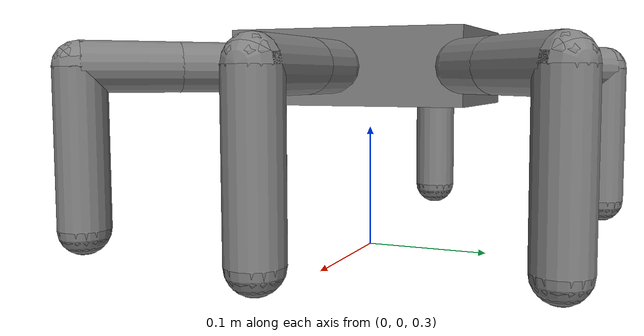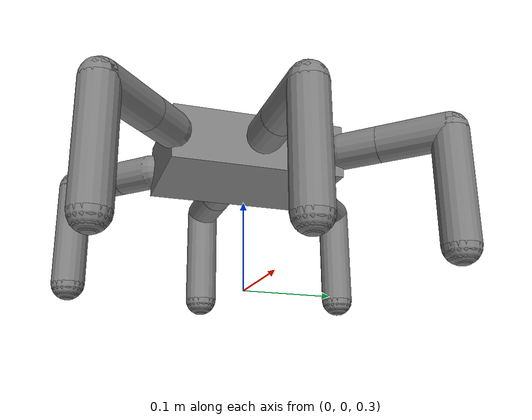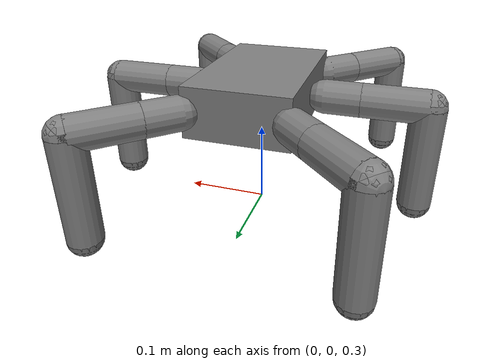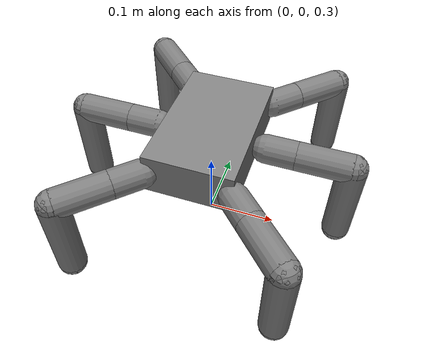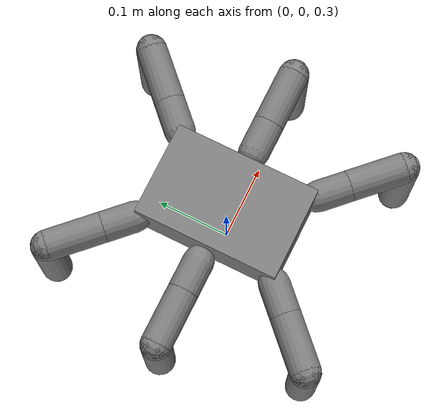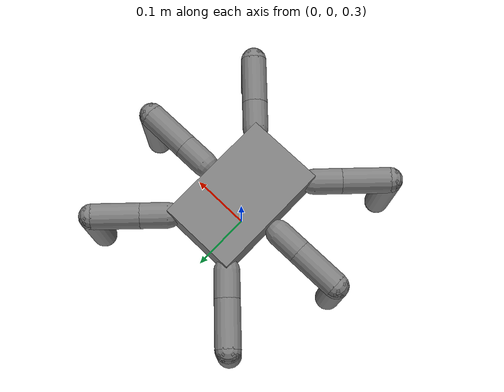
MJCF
<mujoco model="ant">
  <compiler angle="degree" coordinate="local" inertiafromgeom="true"/>
  <option timestep="0.01" integrator="RK4" />

  <default>
    <joint armature="1" damping="1" limited="true"/>
    <geom contype="0" conaffinity="0" condim="3" density="5.0" friction="1 0.5 0.5" />
  </default>

  <asset>
    <texture builtin="gradient" height="100" rgb1="1 1 1" rgb2="0 0 0" type="skybox" width="100"/>
    <texture builtin="flat" height="1278" mark="cross" markrgb="1 1 1" name="texgeom" random="0.01" rgb1="0.8 0.6 0.4" rgb2="0.8 0.6 0.4" type="cube" width="127"/>
    <texture builtin="checker" height="100" name="texplane" rgb1="0 0 0" rgb2="0.8 0.8 0.8" type="2d" width="100"/>
    <material name="MatPlane" reflectance="0.5" shininess="1" specular="1" texrepeat="60 60" texture="texplane"/>
    <material name="geom" texture="texgeom" texuniform="true"/>
  </asset>

  <worldbody>
    <body name="torso" pos="0 0 0.45">
      <geom name="torso_geom" pos="0 0 0" size="0.0615 0.0956 0.03" type="box"/>
      <joint armature="0" damping="0" limited="false" margin="0.01" name="root" pos="0 0 0" type="free"/>

      <body name="front_left_leg" pos="0 0 0">
        <body name="aux_1" pos="0.0615 0.0956 0">
          <joint axis="0 0 1" name="hip_1" pos="0.0 0.0 0.0" range="-30 30" type="hinge"/>
          <geom fromto="0.0 0.0 0.0 0.0297 0.0297 0.0" name="left_leg_geom" size="0.02" type="capsule"/>
          <body pos="0.0297 0.0297 0">
            <joint axis="-1 1 0" name="ankle_1" pos="0.0 0.0 0.0" range="-30 30" type="hinge"/>
            <geom fromto="0.0 0.0 0.0 0.0523 0.0523 0.0" name="left_ankle_geom" size="0.02" type="capsule"/>
            <body pos="0.0523 0.0523 0">
              <joint axis="-1 1 0" name="calf_1" pos="0.0 0.0 0.0" range="-30 30" type="hinge"/>
              <geom fromto="0.0 0.0 0.0 0 0 -0.123" name="left_calf_geom" size="0.02" type="capsule"/>
              <geom name="left_foot_geom" contype="1" pos="0 0 -0.123" size="0.02" type="sphere" mass="0"/>
            </body>
          </body>
        </body>
      </body>

      <body name="front_right_leg" pos="0 0 0">
        <body name="aux_2" pos="-0.0615 0.0956 0">
          <joint axis="0 0 1" name="hip_2" pos="0.0 0.0 0.0" range="-30 30" type="hinge"/>
          <geom fromto="0.0 0.0 0.0 -0.0297 0.0297 0.0" name="right_leg_geom" size="0.02" type="capsule"/>
          <body pos="-0.0297 0.0297 0">
            <joint axis="1 1 0" name="ankle_2" pos="0.0 0.0 0.0" range="-30 30" type="hinge"/>
            <geom fromto="0.0 0.0 0.0 -0.0523 0.0523 0.0" name="right_ankle_geom" size="0.02" type="capsule"/>
            <body pos="-0.0523 0.0523 0">
              <joint axis="1 1 0" name="calf_2" pos="0.0 0.0 0.0" range="-30 30" type="hinge"/>
              <geom fromto="0.0 0.0 0.0 0 0 -0.123" name="right_calf_geom" size="0.02" type="capsule"/>
              <geom name="right_foot_geom" contype="1" pos="0 0 -0.123" size="0.02" type="sphere" mass="0" />
            </body>
          </body>
        </body>
      </body>

      <body name="back_leg" pos="0 0 0">
        <body name="aux_3" pos="-0.0615 -0.0956 0">
          <joint axis="0 0 1" name="hip_3" pos="0.0 0.0 0.0" range="-30 30" type="hinge"/>
          <geom fromto="0.0 0.0 0.0 -0.0297 -0.0297 0.0" name="back_leg_geom" size="0.02" type="capsule"/>
          <body pos="-0.0297 -0.0297 0">
            <joint axis="-1 1 0" name="ankle_3" pos="0.0 0.0 0.0" range="-30 30" type="hinge"/>
            <geom fromto="0.0 0.0 0.0 -0.0523 -0.0523 0.0" name="third_ankle_geom" size="0.02" type="capsule"/>
            <body pos="-0.0523 -0.0523 0">
              <joint axis="-1 1 0" name="calf_3" pos="0.0 0.0 0.0" range="-30 30" type="hinge"/>
              <geom fromto="0.0 0.0 0.0 0 0 -0.123" name="third_calf_geom" size="0.02" type="capsule"/>
              <geom name="third_foot_geom" contype="1" pos="0 0 -0.123" size="0.02" type="sphere" mass="0" />
            </body>
          </body>
        </body>
      </body>

      <body name="right_back_leg" pos="0 0 0">
        <body name="aux_4" pos="0.0615 -0.0956 0">
          <joint axis="0 0 1" name="hip_4" pos="0.0 0.0 0.0" range="-30 30" type="hinge"/>
          <geom fromto="0.0 0.0 0.0 0.0297 -0.0297 0.0" name="rightback_leg_geom" size="0.02" type="capsule"/>
          <body pos="0.0297 -0.0297 0">
            <joint axis="1 1 0" name="ankle_4" pos="0.0 0.0 0.0" range="-30 30" type="hinge"/>
            <geom fromto="0.0 0.0 0.0 0.0523 -0.0523 0.0" name="fourth_ankle_geom" size="0.02" type="capsule"/>
            <body pos="0.0523 -0.0523 0">
              <joint axis="1 1 0" name="calf_4" pos="0.0 0.0 0.0" range="-30 30" type="hinge"/>
              <geom fromto="0.0 0.0 0.0 0 0 -0.123" name="fourth_calf_geom" size="0.02" type="capsule"/>
              <geom name="fourth_foot_geom" contype="1" pos="0 0 -0.123" size="0.02" type="sphere" mass="0" />
            </body>
          </body>
        </body>
      </body>

      <body name="middle_left_leg" pos="0 0 0">
        <body name="aux_5" pos="0.0775 0.0 0">
          <joint axis="0 0 1" name="hip_5" pos="0.0 0.0 0.0" range="-30 30" type="hinge"/>
          <geom fromto="0.0 0.0 0.0 0.042 0.0 0.0" name="middle1_leg_geom" size="0.02" type="capsule"/>
          <body pos="0.042 0.0 0">
            <joint axis="0 1 0" name="ankle_5" pos="0.0 0.0 0.0" range="-30 30" type="hinge"/>
            <geom fromto="0.0 0.0 0.0 0.074 0.0 0.0" name="middle1_ankle_geom" size="0.02" type="capsule"/>
            <body pos="0.074 0 0">
              <joint axis="0 1 0" name="calf_5" pos="0.0 0.0 0.0" range="-30 30" type="hinge"/>
              <geom fromto="0.0 0.0 0.0 0.0 0.0 -0.123" name="middle1_calf_geom" size="0.02" type="capsule"/>
              <geom name="middle1_foot_geom" contype="1" pos="0.0 0 -0.123" size="0.02" type="sphere" mass="0" />
            </body>
          </body>
        </body>
      </body>

      <body name="middle_right_leg" pos="0 0 0">
        <body name="aux_6" pos="-0.0775 0.0 0">
          <joint axis="0 0 1" name="hip_6" pos="0.0 0.0 0.0" range="-30 30" type="hinge"/>
          <geom fromto="0.0 0.0 0.0 -0.042 0.0 0.0" name="middle2_leg_geom" size="0.02" type="capsule"/>
          <body pos="-0.042 0.0 0">
            <joint axis="0 1 0" name="ankle_6" pos="0.0 0.0 0.0" range="-30 30" type="hinge"/>
            <geom fromto="0.0 0.0 0.0 -0.074 0.0 0.0" name="middle2_ankle_geom" size="0.02" type="capsule"/>
            <body pos="-0.074 0.0 0">
              <joint axis="0 1 0" name="calf_6" pos="0.0 0.0 0.0" range="-30 30" type="hinge"/>
              <geom fromto="0.0 0.0 0.0 0.0 0.0 -0.123" name="middle2_calf_geom" size="0.02" type="capsule"/>
              <geom name="middle2_foot_geom" contype="1" pos="0.0 0 -0.123" size="0.02" type="sphere" mass="0" />
            </body>
          </body>
        </body>
      </body>

    </body>
  </worldbody>

  <actuator>
    <motor ctrllimited="true" ctrlrange="-1.0 1.0" joint="hip_1" gear="150"/>
    <motor ctrllimited="true" ctrlrange="-1.0 1.0" joint="ankle_1" gear="150"/>
    <motor ctrllimited="true" ctrlrange="-1.0 1.0" joint="calf_1" gear="150"/>
    <motor ctrllimited="true" ctrlrange="-1.0 1.0" joint="hip_2" gear="150"/>
    <motor ctrllimited="true" ctrlrange="-1.0 1.0" joint="ankle_2" gear="150"/>
    <motor ctrllimited="true" ctrlrange="-1.0 1.0" joint="calf_2" gear="150"/>
    <motor ctrllimited="true" ctrlrange="-1.0 1.0" joint="hip_3" gear="150"/>
    <motor ctrllimited="true" ctrlrange="-1.0 1.0" joint="ankle_3" gear="150"/>
    <motor ctrllimited="true" ctrlrange="-1.0 1.0" joint="calf_3" gear="150"/>
    <motor ctrllimited="true" ctrlrange="-1.0 1.0" joint="hip_4" gear="150"/>
    <motor ctrllimited="true" ctrlrange="-1.0 1.0" joint="ankle_4" gear="150"/>
    <motor ctrllimited="true" ctrlrange="-1.0 1.0" joint="calf_4" gear="150"/>
    <motor ctrllimited="true" ctrlrange="-1.0 1.0" joint="hip_5" gear="150"/>
    <motor ctrllimited="true" ctrlrange="-1.0 1.0" joint="ankle_5" gear="150"/>
    <motor ctrllimited="true" ctrlrange="-1.0 1.0" joint="calf_5" gear="150"/>
    <motor ctrllimited="true" ctrlrange="-1.0 1.0" joint="hip_6" gear="150"/>
    <motor ctrllimited="true" ctrlrange="-1.0 1.0" joint="ankle_6" gear="150"/>
    <motor ctrllimited="true" ctrlrange="-1.0 1.0" joint="calf_6" gear="150"/>
  </actuator>

</mujoco>
